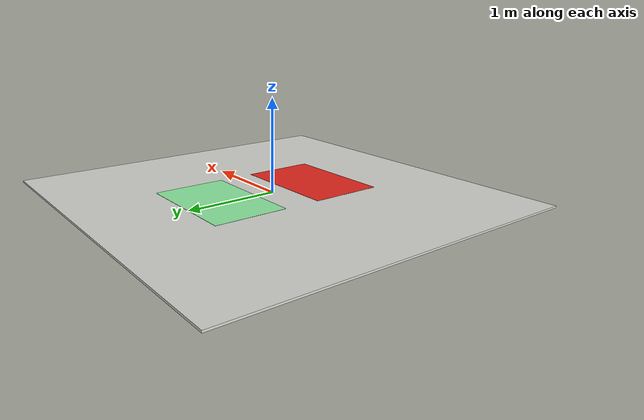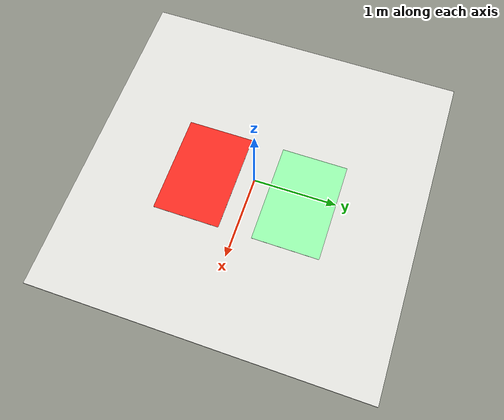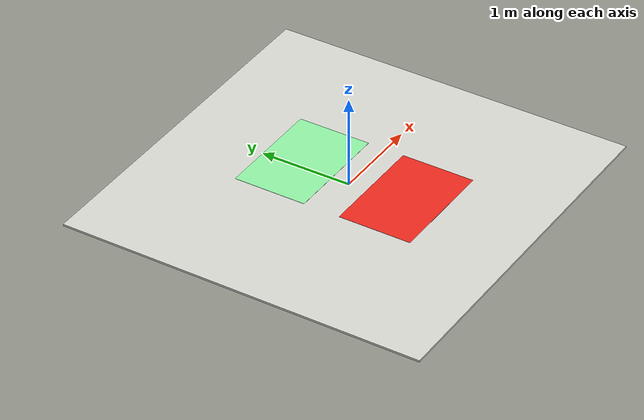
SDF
<?xml version="1.0"?>
<sdf version="1.7">
  <world name="pick_place">
    <plugin filename="ignition-gazebo-physics-system"
            name="ignition::gazebo::systems::Physics" />
    <plugin filename="ignition-gazebo-user-commands-system"
            name="ignition::gazebo::systems::UserCommands" />
    <plugin filename="ignition-gazebo-scene-broadcaster-system"
            name="ignition::gazebo::systems::SceneBroadcaster" />
    <plugin filename="ignition-gazebo-sensors-system"
            name="ignition::gazebo::systems::Sensors">
      <render_engine>ogre2</render_engine>
    </plugin>

    <physics name="default_physics" type="ode">
      <max_step_size>0.001</max_step_size>
      <real_time_factor>1.0</real_time_factor>
    </physics>

    <gravity>0 0 -9.81</gravity>

    <scene>
      <ambient>0.7 0.7 0.7 1</ambient>
      <background>0.82 0.86 0.90 1</background>
      <shadows>true</shadows>
    </scene>

    <light name="sun" type="directional">
      <pose>0 0 6 0 0 0</pose>
      <diffuse>1 1 1 1</diffuse>
      <specular>0.3 0.3 0.3 1</specular>
      <direction>-0.4 0.3 -1</direction>
    </light>

    <model name="ground">
      <static>true</static>
      <pose>0 0 -0.01 0 0 0</pose>
      <link name="ground_link">
        <collision name="collision">
          <geometry>
            <box>
              <size>4 4 0.02</size>
            </box>
          </geometry>
          <surface>
            <friction><ode><mu>1.0</mu><mu2>1.0</mu2></ode></friction>
            <contact><ode><kp>200000</kp><kd>80</kd></ode></contact>
          </surface>
        </collision>

        <visual name="visual">
          <geometry>
            <box>
              <size>4 4 0.02</size>
            </box>
          </geometry>
          <material>
            <ambient>0.82 0.82 0.80 1</ambient>
            <diffuse>0.84 0.84 0.82 1</diffuse>
            <specular>0.05 0.05 0.05 1</specular>
          </material>
        </visual>
      </link>
    </model>

    <!-- 分类区只有视觉，不增加碰撞；地面碰撞顶面仍严格为 z=0。 -->
    <model name="bottle_zone_marker">
      <static>true</static>
      <pose>0.10 -0.60 0.001 0 0 0</pose>
      <link name="marker_link">
        <visual name="marker_visual">
          <geometry><box><size>1.20 0.80 0.002</size></box></geometry>
          <material>
            <ambient>0.72 0.12 0.10 1</ambient>
            <diffuse>0.92 0.16 0.12 1</diffuse>
            <specular>0.05 0.05 0.05 1</specular>
          </material>
        </visual>
      </link>
    </model>

    <model name="tennis_zone_marker">
      <static>true</static>
      <pose>0.10 0.60 0.001 0 0 0</pose>
      <link name="marker_link">
        <visual name="marker_visual">
          <geometry><box><size>1.20 0.80 0.002</size></box></geometry>
          <material>
            <ambient>0.50 0.86 0.58 1</ambient>
            <diffuse>0.56 0.94 0.64 1</diffuse>
            <specular>0.05 0.05 0.05 1</specular>
          </material>
        </visual>
      </link>
    </model>

    <!-- 六个中性命名任务物体由 spawn_sorting_scene.py 随机生成。 -->
  </world>
</sdf>
